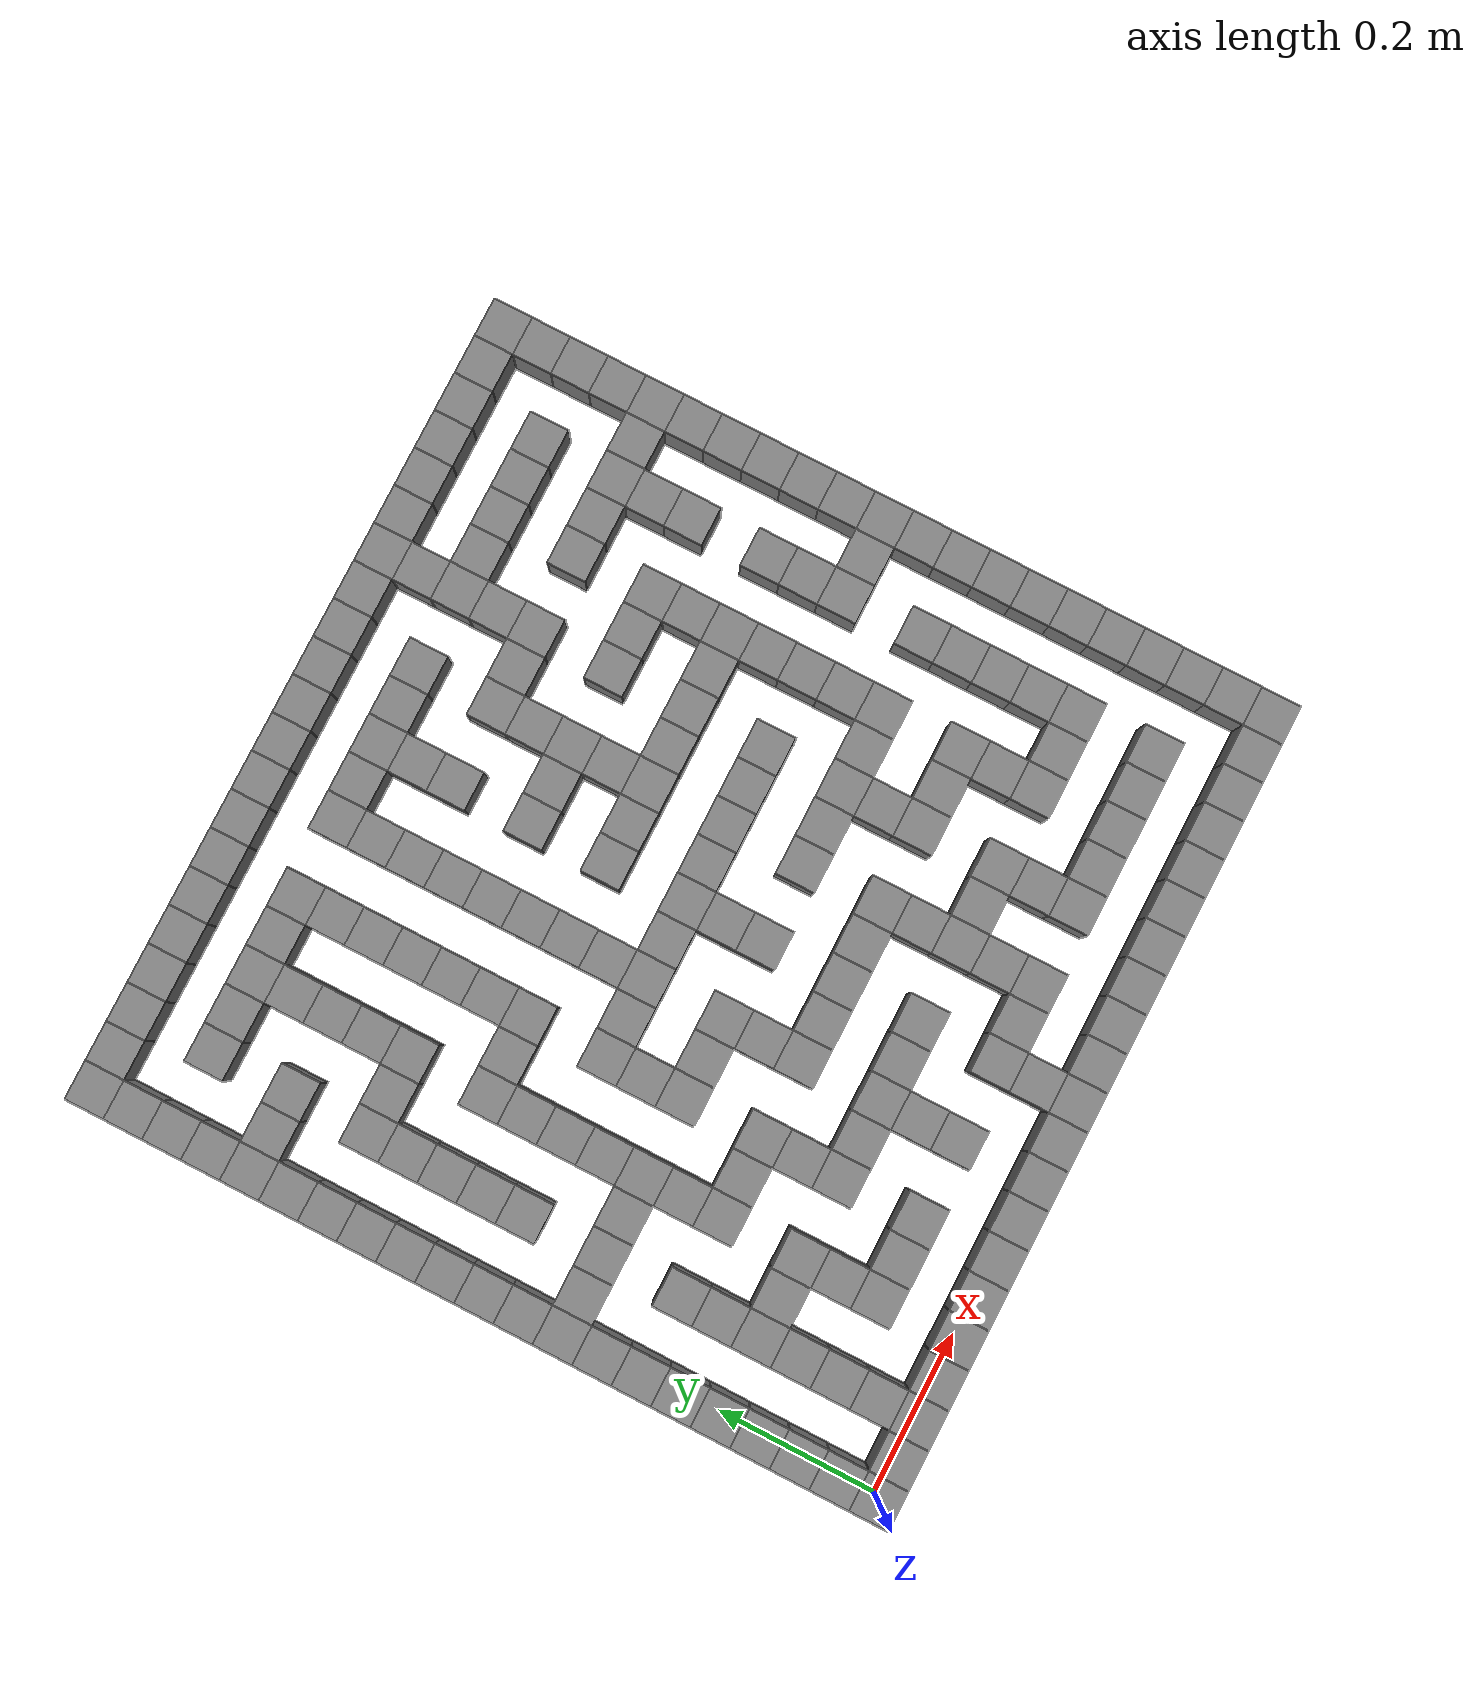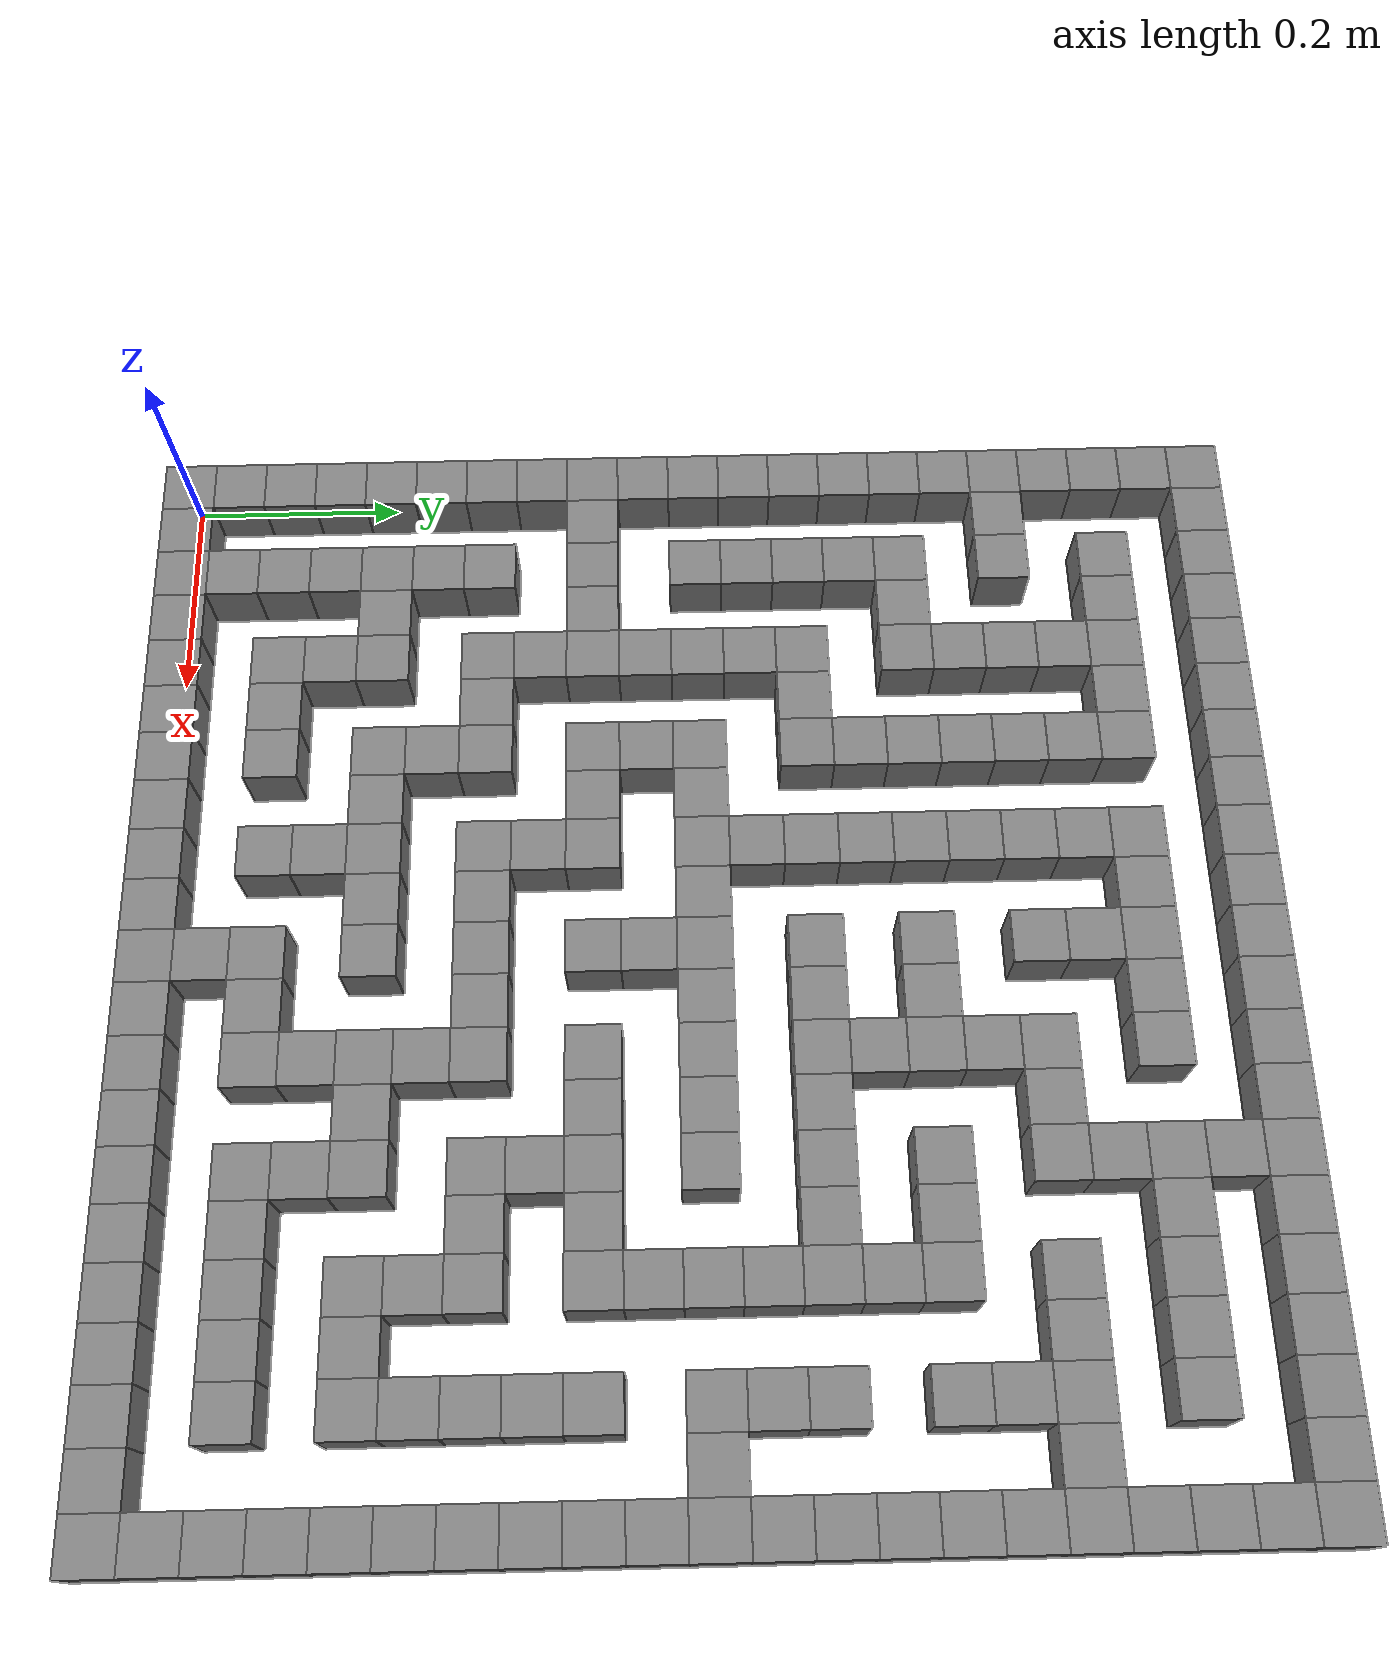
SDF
<?xml version="1.0" ?>
<sdf version="1.9">
  <world name="default">
    <gravity>0 0 -9.81</gravity>
    <light name="sun" type="directional">
      <cast_shadows>true</cast_shadows>
      <pose>0 0 10 0 0 0</pose>
      <diffuse>1 1 1 1</diffuse>
      <specular>0.1 0.1 0.1 1</specular>
      <direction>-0.5 0.5 -1</direction>
    </light>

    <!-- Include the generated model by file path -->
    <include>
      <uri>file:///home/deyung/ros2_newws/src/maze/maze_model.sdf</uri>
      <name>maze</name>
      <pose>0 0 0 0 0 0</pose>
    </include>
  </world>
</sdf>
